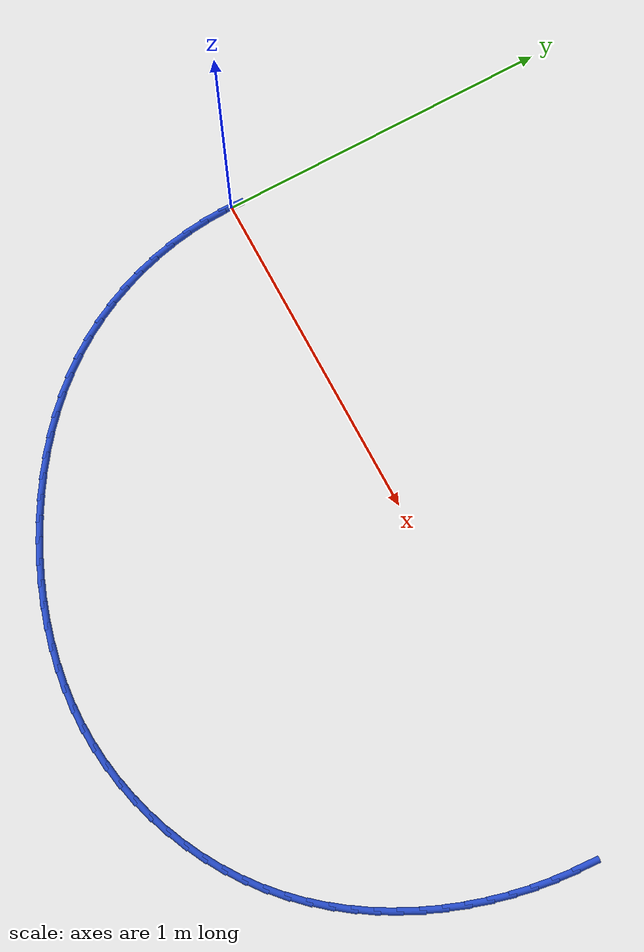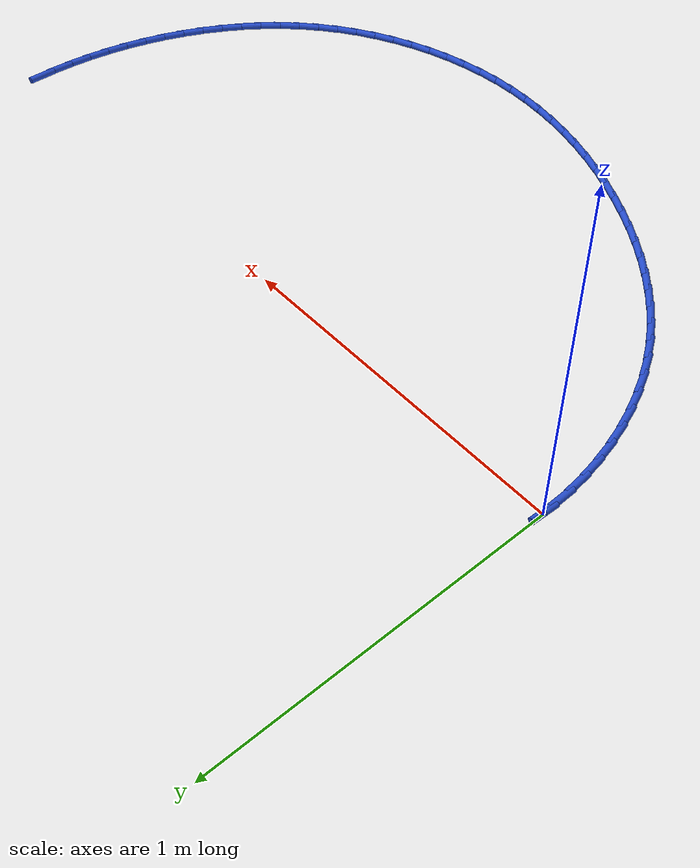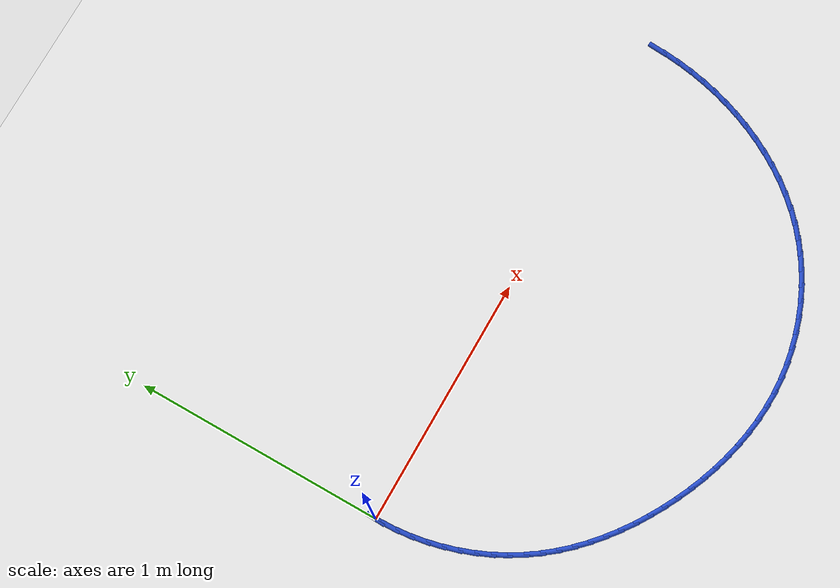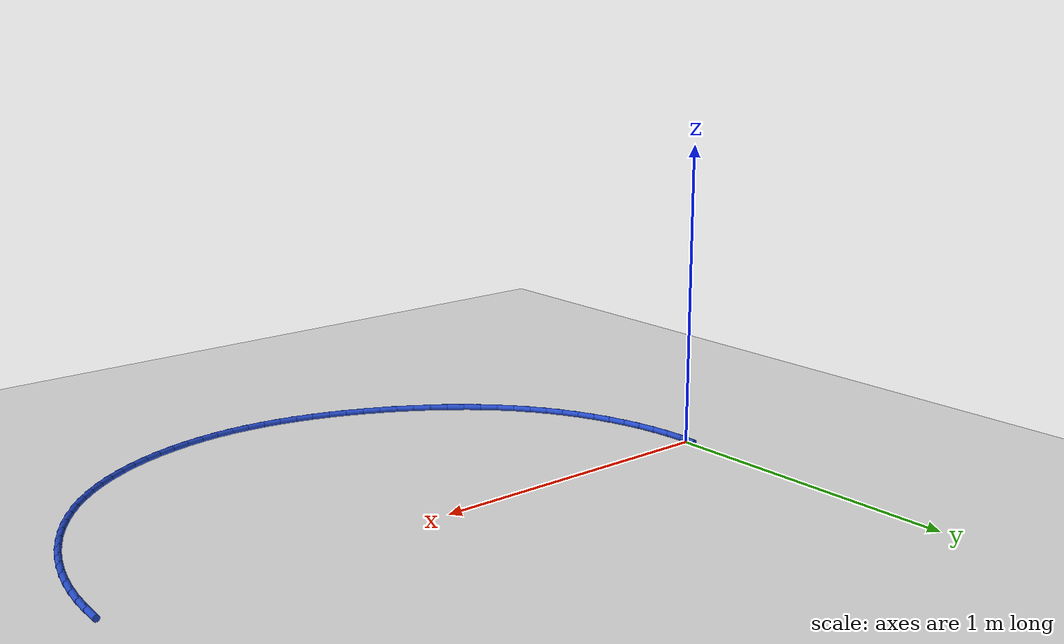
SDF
<sdf version="1.6">
 <world name="default">
  <model name="ground_plane">
   <static>1</static>
   <link name="link">
    <collision name="collision">
     <geometry><plane><normal>0 0 1</normal><size>100 100</size></plane></geometry>
     <surface><friction><ode><mu>100</mu><mu2>50</mu2></ode></friction></surface>
    </collision>
    <visual name="visual">
     <cast_shadows>0</cast_shadows>
     <geometry><plane><normal>0 0 1</normal><size>100 100</size></plane></geometry>
     <material>
      <script><uri>file://media/materials/scripts/gazebo.material</uri><name>Gazebo/WhiteGlow</name></script>
     </material>
    </visual>
   </link>
  </model>
  <model name="line">
   <link name="link_0">
    <pose>-2.7755575615628914e-17 -1.249000902703301e-16 0.01 0 1.57 1.528311420767567</pose>
    <collision name="collision">
     <geometry><cylinder><radius>0.01</radius><length>0.08</length></cylinder></geometry>
    </collision>
    <visual name="visual">
     <material>
      <script><name>Gazebo/Blue</name><uri>file://media/materials/scripts/gazebo.material</uri></script>
     </material>
     <geometry><cylinder><radius>0.01</radius><length>0.08</length></cylinder></geometry>
    </visual>
   </link>
   <link name="link_56">
    <pose>2.0990689467882016 -0.0384163237680262 0.01 0 1.57 1.5016381213322398</pose>
    <collision name="collision">
     <geometry><cylinder><radius>0.01</radius><length>0.08</length></cylinder></geometry>
    </collision>
    <visual name="visual">
     <material>
      <script><name>Gazebo/Blue</name><uri>file://media/materials/scripts/gazebo.material</uri></script>
     </material>
     <geometry><cylinder><radius>0.01</radius><length>0.08</length></cylinder></geometry>
    </visual>
   </link>
   <link name="link_57">
    <pose>2.0948997554606317 -0.09860502150597478 0.01 0 1.57 1.4510282659480043</pose>
    <collision name="collision">
     <geometry><cylinder><radius>0.01</radius><length>0.08</length></cylinder></geometry>
    </collision>
    <visual name="visual">
     <material>
      <script><name>Gazebo/Blue</name><uri>file://media/materials/scripts/gazebo.material</uri></script>
     </material>
     <geometry><cylinder><radius>0.01</radius><length>0.08</length></cylinder></geometry>
    </visual>
   </link>
   <link name="link_58">
    <pose>2.08768727410764 -0.1585372109972912 0.01 0 1.57 1.4006070061159641</pose>
    <collision name="collision">
     <geometry><cylinder><radius>0.01</radius><length>0.08</length></cylinder></geometry>
    </collision>
    <visual name="visual">
     <material>
      <script><name>Gazebo/Blue</name><uri>file://media/materials/scripts/gazebo.material</uri></script>
     </material>
     <geometry><cylinder><radius>0.01</radius><length>0.08</length></cylinder></geometry>
    </visual>
   </link>
   <link name="link_59">
    <pose>2.077454255240359 -0.21808283793392588 0.01 0 1.57 1.3502999251719656</pose>
    <collision name="collision">
     <geometry><cylinder><radius>0.01</radius><length>0.08</length></cylinder></geometry>
    </collision>
    <visual name="visual">
     <material>
      <script><name>Gazebo/Blue</name><uri>file://media/materials/scripts/gazebo.material</uri></script>
     </material>
     <geometry><cylinder><radius>0.01</radius><length>0.08</length></cylinder></geometry>
    </visual>
   </link>
   <link name="link_60">
    <pose>2.064223451369922 -0.2771118480078263 0.01 0 1.57 1.300027614703623</pose>
    <collision name="collision">
     <geometry><cylinder><radius>0.01</radius><length>0.08</length></cylinder></geometry>
    </collision>
    <visual name="visual">
     <material>
      <script><name>Gazebo/Blue</name><uri>file://media/materials/scripts/gazebo.material</uri></script>
     </material>
     <geometry><cylinder><radius>0.01</radius><length>0.08</length></cylinder></geometry>
    </visual>
   </link>
   <link name="link_61">
    <pose>2.048017543666311 -0.33549344261498915 0.01 0 1.57 1.2494542087139584</pose>
    <collision name="collision">
     <geometry><cylinder><radius>0.01</radius><length>0.08</length></cylinder></geometry>
    </collision>
    <visual name="visual">
     <material>
      <script><name>Gazebo/Blue</name><uri>file://media/materials/scripts/gazebo.material</uri></script>
     </material>
     <geometry><cylinder><radius>0.01</radius><length>0.08</length></cylinder></geometry>
    </visual>
   </link>
   <link name="link_62">
    <pose>2.0288554889673236 -0.39305796752273653 0.01 0 1.57 1.1979938788183087</pose>
    <collision name="collision">
     <geometry><cylinder><radius>0.01</radius><length>0.08</length></cylinder></geometry>
    </collision>
    <visual name="visual">
     <material>
      <script><name>Gazebo/Blue</name><uri>file://media/materials/scripts/gazebo.material</uri></script>
     </material>
     <geometry><cylinder><radius>0.01</radius><length>0.08</length></cylinder></geometry>
    </visual>
   </link>
   <link name="link_63">
    <pose>2.006750770308327 -0.44957866080113745 0.01 0 1.57 1.1453286029634988</pose>
    <collision name="collision">
     <geometry><cylinder><radius>0.01</radius><length>0.08</length></cylinder></geometry>
    </collision>
    <visual name="visual">
     <material>
      <script><name>Gazebo/Blue</name><uri>file://media/materials/scripts/gazebo.material</uri></script>
     </material>
     <geometry><cylinder><radius>0.01</radius><length>0.08</length></cylinder></geometry>
    </visual>
   </link>
   <link name="link_64">
    <pose>1.981716433142336 -0.5048241952621892 0.01 0 1.57 1.091180291250496</pose>
    <collision name="collision">
     <geometry><cylinder><radius>0.01</radius><length>0.08</length></cylinder></geometry>
    </collision>
    <visual name="visual">
     <material>
      <script><name>Gazebo/Blue</name><uri>file://media/materials/scripts/gazebo.material</uri></script>
     </material>
     <geometry><cylinder><radius>0.01</radius><length>0.08</length></cylinder></geometry>
    </visual>
   </link>
   <link name="link_65">
    <pose>1.9537655229223605 -0.5585632437178906 0.01 0 1.57 1.035287922951446</pose>
    <collision name="collision">
     <geometry><cylinder><radius>0.01</radius><length>0.08</length></cylinder></geometry>
    </collision>
    <visual name="visual">
     <material>
      <script><name>Gazebo/Blue</name><uri>file://media/materials/scripts/gazebo.material</uri></script>
     </material>
     <geometry><cylinder><radius>0.01</radius><length>0.08</length></cylinder></geometry>
    </visual>
   </link>
   <link name="link_66">
    <pose>1.922911085101413 -0.6105644789802401 0.01 0 1.57 0.9774139737150497</pose>
    <collision name="collision">
     <geometry><cylinder><radius>0.01</radius><length>0.08</length></cylinder></geometry>
    </collision>
    <visual name="visual">
     <material>
      <script><name>Gazebo/Blue</name><uri>file://media/materials/scripts/gazebo.material</uri></script>
     </material>
     <geometry><cylinder><radius>0.01</radius><length>0.08</length></cylinder></geometry>
    </visual>
   </link>
   <link name="link_67">
    <pose>1.889166165132506 -0.6605965738612352 0.01 0 1.57 0.9173532860880779</pose>
    <collision name="collision">
     <geometry><cylinder><radius>0.01</radius><length>0.08</length></cylinder></geometry>
    </collision>
    <visual name="visual">
     <material>
      <script><name>Gazebo/Blue</name><uri>file://media/materials/scripts/gazebo.material</uri></script>
     </material>
     <geometry><cylinder><radius>0.01</radius><length>0.08</length></cylinder></geometry>
    </visual>
   </link>
   <link name="link_68">
    <pose>1.8525438084686505 -0.708428201172875 0.01 0 1.57 0.8549444720194123</pose>
    <collision name="collision">
     <geometry><cylinder><radius>0.01</radius><length>0.08</length></cylinder></geometry>
    </collision>
    <visual name="visual">
     <material>
      <script><name>Gazebo/Blue</name><uri>file://media/materials/scripts/gazebo.material</uri></script>
     </material>
     <geometry><cylinder><radius>0.01</radius><length>0.08</length></cylinder></geometry>
    </visual>
   </link>
   <link name="link_69">
    <pose>1.8130570605628595 -0.7538280337271563 0.01 0 1.57 0.7900836163991656</pose>
    <collision name="collision">
     <geometry><cylinder><radius>0.01</radius><length>0.08</length></cylinder></geometry>
    </collision>
    <visual name="visual">
     <material>
      <script><name>Gazebo/Blue</name><uri>file://media/materials/scripts/gazebo.material</uri></script>
     </material>
     <geometry><cylinder><radius>0.01</radius><length>0.08</length></cylinder></geometry>
    </visual>
   </link>
   <link name="link_70">
    <pose>1.7707189668681442 -0.796564744336079 0.01 0 1.57 0.7227536245407105</pose>
    <collision name="collision">
     <geometry><cylinder><radius>0.01</radius><length>0.08</length></cylinder></geometry>
    </collision>
    <visual name="visual">
     <material>
      <script><name>Gazebo/Blue</name><uri>file://media/materials/scripts/gazebo.material</uri></script>
     </material>
     <geometry><cylinder><radius>0.01</radius><length>0.08</length></cylinder></geometry>
    </visual>
   </link>
   <link name="link_71">
    <pose>1.725543366677021 -0.836407435027778 0.01 0 1.57 0.6544915356744053</pose>
    <collision name="collision">
     <geometry><cylinder><radius>0.01</radius><length>0.08</length></cylinder></geometry>
    </collision>
    <visual name="visual">
     <material>
      <script><name>Gazebo/Blue</name><uri>file://media/materials/scripts/gazebo.material</uri></script>
     </material>
     <geometry><cylinder><radius>0.01</radius><length>0.08</length></cylinder></geometry>
    </visual>
   </link>
   <link name="link_72">
    <pose>1.6776303620639228 -0.8731718487168267 0.01 0 1.57 0.587973512055599</pose>
    <collision name="collision">
     <geometry><cylinder><radius>0.01</radius><length>0.08</length></cylinder></geometry>
    </collision>
    <visual name="visual">
     <material>
      <script><name>Gazebo/Blue</name><uri>file://media/materials/scripts/gazebo.material</uri></script>
     </material>
     <geometry><cylinder><radius>0.01</radius><length>0.08</length></cylinder></geometry>
    </visual>
   </link>
   <link name="link_73">
    <pose>1.6272425661077219 -0.9067615953809018 0.01 0 1.57 0.5231735142261574</pose>
    <collision name="collision">
     <geometry><cylinder><radius>0.01</radius><length>0.08</length></cylinder></geometry>
    </collision>
    <visual name="visual">
     <material>
      <script><name>Gazebo/Blue</name><uri>file://media/materials/scripts/gazebo.material</uri></script>
     </material>
     <geometry><cylinder><radius>0.01</radius><length>0.08</length></cylinder></geometry>
    </visual>
   </link>
   <link name="link_74">
    <pose>1.5746605807782226 -0.9370900112991127 0.01 0 1.57 0.45971497010024237</pose>
    <collision name="collision">
     <geometry><cylinder><radius>0.01</radius><length>0.08</length></cylinder></geometry>
    </collision>
    <visual name="visual">
     <material>
      <script><name>Gazebo/Blue</name><uri>file://media/materials/scripts/gazebo.material</uri></script>
     </material>
     <geometry><cylinder><radius>0.01</radius><length>0.08</length></cylinder></geometry>
    </visual>
   </link>
   <link name="link_75">
    <pose>1.5201650080452331 -0.964070432750567 0.01 0 1.57 0.3972003617985025</pose>
    <collision name="collision">
     <geometry><cylinder><radius>0.01</radius><length>0.08</length></cylinder></geometry>
    </collision>
    <visual name="visual">
     <material>
      <script><name>Gazebo/Blue</name><uri>file://media/materials/scripts/gazebo.material</uri></script>
     </material>
     <geometry><cylinder><radius>0.01</radius><length>0.08</length></cylinder></geometry>
    </visual>
   </link>
   <link name="link_76">
    <pose>1.4640364498785572 -0.9876161960143741 0.01 0 1.57 0.33521895207863944</pose>
    <collision name="collision">
     <geometry><cylinder><radius>0.01</radius><length>0.08</length></cylinder></geometry>
    </collision>
    <visual name="visual">
     <material>
      <script><name>Gazebo/Blue</name><uri>file://media/materials/scripts/gazebo.material</uri></script>
     </material>
     <geometry><cylinder><radius>0.01</radius><length>0.08</length></cylinder></geometry>
    </visual>
   </link>
   <link name="link_77">
    <pose>1.4065555082480012 -1.007640637369641 0.01 0 1.57 0.27335222612702365</pose>
    <collision name="collision">
     <geometry><cylinder><radius>0.01</radius><length>0.08</length></cylinder></geometry>
    </collision>
    <visual name="visual">
     <material>
      <script><name>Gazebo/Blue</name><uri>file://media/materials/scripts/gazebo.material</uri></script>
     </material>
     <geometry><cylinder><radius>0.01</radius><length>0.08</length></cylinder></geometry>
    </visual>
   </link>
   <link name="link_78">
    <pose>1.3480027851233698 -1.0240570930954764 0.01 0 1.57 0.2111780087107186</pose>
    <collision name="collision">
     <geometry><cylinder><radius>0.01</radius><length>0.08</length></cylinder></geometry>
    </collision>
    <visual name="visual">
     <material>
      <script><name>Gazebo/Blue</name><uri>file://media/materials/scripts/gazebo.material</uri></script>
     </material>
     <geometry><cylinder><radius>0.01</radius><length>0.08</length></cylinder></geometry>
    </visual>
   </link>
   <link name="link_79">
    <pose>1.28865888247447 -1.0367788994709888 0.01 0 1.57 0.14827423749887417</pose>
    <collision name="collision">
     <geometry><cylinder><radius>0.01</radius><length>0.08</length></cylinder></geometry>
    </collision>
    <visual name="visual">
     <material>
      <script><name>Gazebo/Blue</name><uri>file://media/materials/scripts/gazebo.material</uri></script>
     </material>
     <geometry><cylinder><radius>0.01</radius><length>0.08</length></cylinder></geometry>
    </visual>
   </link>
   <link name="link_80">
    <pose>1.2288044022711058 -1.0457193927752866 0.01 0 1.57 0.08422339304668282</pose>
    <collision name="collision">
     <geometry><cylinder><radius>0.01</radius><length>0.08</length></cylinder></geometry>
    </collision>
    <visual name="visual">
     <material>
      <script><name>Gazebo/Blue</name><uri>file://media/materials/scripts/gazebo.material</uri></script>
     </material>
     <geometry><cylinder><radius>0.01</radius><length>0.08</length></cylinder></geometry>
    </visual>
   </link>
   <link name="link_81">
    <pose>1.168719946483085 -1.0507919092874782 0.01 0 1.57 0.019200824086310072</pose>
    <collision name="collision">
     <geometry><cylinder><radius>0.01</radius><length>0.08</length></cylinder></geometry>
    </collision>
    <visual name="visual">
     <material>
      <script><name>Gazebo/Blue</name><uri>file://media/materials/scripts/gazebo.material</uri></script>
     </material>
     <geometry><cylinder><radius>0.01</radius><length>0.08</length></cylinder></geometry>
    </visual>
   </link>
   <link name="link_82">
    <pose>1.1086629983351688 -1.051945193915291 0.01 0 1.57 -0.0441472594957263</pose>
    <collision name="collision">
     <geometry><cylinder><radius>0.01</radius><length>0.08</length></cylinder></geometry>
    </collision>
    <visual name="visual">
     <material>
      <script><name>Gazebo/Blue</name><uri>file://media/materials/scripts/gazebo.material</uri></script>
     </material>
     <geometry><cylinder><radius>0.01</radius><length>0.08</length></cylinder></geometry>
    </visual>
   </link>
   <link name="link_83">
    <pose>1.0487788938912799 -1.0492997559577073 0.01 0 1.57 -0.10484323609497484</pose>
    <collision name="collision">
     <geometry><cylinder><radius>0.01</radius><length>0.08</length></cylinder></geometry>
    </collision>
    <visual name="visual">
     <material>
      <script><name>Gazebo/Blue</name><uri>file://media/materials/scripts/gazebo.material</uri></script>
     </material>
     <geometry><cylinder><radius>0.01</radius><length>0.08</length></cylinder></geometry>
    </visual>
   </link>
   <link name="link_84">
    <pose>0.9891790110357934 -1.0430281150008573 0.01 0 1.57 -0.16281299040709563</pose>
    <collision name="collision">
     <geometry><cylinder><radius>0.01</radius><length>0.08</length></cylinder></geometry>
    </collision>
    <visual name="visual">
     <material>
      <script><name>Gazebo/Blue</name><uri>file://media/materials/scripts/gazebo.material</uri></script>
     </material>
     <geometry><cylinder><radius>0.01</radius><length>0.08</length></cylinder></geometry>
    </visual>
   </link>
   <link name="link_85">
    <pose>0.9299747202110114 -1.0333028020291377 0.01 0 1.57 -0.2180617342469177</pose>
    <collision name="collision">
     <geometry><cylinder><radius>0.01</radius><length>0.08</length></cylinder></geometry>
    </collision>
    <visual name="visual">
     <material>
      <script><name>Gazebo/Blue</name><uri>file://media/materials/scripts/gazebo.material</uri></script>
     </material>
     <geometry><cylinder><radius>0.01</radius><length>0.08</length></cylinder></geometry>
    </visual>
   </link>
   <link name="link_86">
    <pose>0.8712773918592366 -1.0202963480269447 0.01 0 1.57 -0.27065926144070784</pose>
    <collision name="collision">
     <geometry><cylinder><radius>0.01</radius><length>0.08</length></cylinder></geometry>
    </collision>
    <visual name="visual">
     <material>
      <script><name>Gazebo/Blue</name><uri>file://media/materials/scripts/gazebo.material</uri></script>
     </material>
     <geometry><cylinder><radius>0.01</radius><length>0.08</length></cylinder></geometry>
    </visual>
   </link>
   <link name="link_87">
    <pose>0.8131983964227698 -1.004181283978674 0.01 0 1.57 -0.32072562668594207</pose>
    <collision name="collision">
     <geometry><cylinder><radius>0.01</radius><length>0.08</length></cylinder></geometry>
    </collision>
    <visual name="visual">
     <material>
      <script><name>Gazebo/Blue</name><uri>file://media/materials/scripts/gazebo.material</uri></script>
     </material>
     <geometry><cylinder><radius>0.01</radius><length>0.08</length></cylinder></geometry>
    </visual>
   </link>
   <link name="link_88">
    <pose>0.7558491043439144 -0.9851301408687217 0.01 0 1.57 -0.36841825484527085</pose>
    <collision name="collision">
     <geometry><cylinder><radius>0.01</radius><length>0.08</length></cylinder></geometry>
    </collision>
    <visual name="visual">
     <material>
      <script><name>Gazebo/Blue</name><uri>file://media/materials/scripts/gazebo.material</uri></script>
     </material>
     <geometry><cylinder><radius>0.01</radius><length>0.08</length></cylinder></geometry>
    </visual>
   </link>
   <link name="link_89">
    <pose>0.6993408860649715 -0.9633154496814846 0.01 0 1.57 -0.4139211183435951</pose>
    <collision name="collision">
     <geometry><cylinder><radius>0.01</radius><length>0.08</length></cylinder></geometry>
    </collision>
    <visual name="visual">
     <material>
      <script><name>Gazebo/Blue</name><uri>file://media/materials/scripts/gazebo.material</uri></script>
     </material>
     <geometry><cylinder><radius>0.01</radius><length>0.08</length></cylinder></geometry>
    </visual>
   </link>
   <link name="link_90">
    <pose>0.6437851120282438 -0.9389097414013581 0.01 0 1.57 -0.4574362000726962</pose>
    <collision name="collision">
     <geometry><cylinder><radius>0.01</radius><length>0.08</length></cylinder></geometry>
    </collision>
    <visual name="visual">
     <material>
      <script><name>Gazebo/Blue</name><uri>file://media/materials/scripts/gazebo.material</uri></script>
     </material>
     <geometry><cylinder><radius>0.01</radius><length>0.08</length></cylinder></geometry>
    </visual>
   </link>
   <link name="link_91">
    <pose>0.5892931526760327 -0.9120855470127383 0.01 0 1.57 -0.49963237468859195</pose>
    <collision name="collision">
     <geometry><cylinder><radius>0.01</radius><length>0.08</length></cylinder></geometry>
    </collision>
    <visual name="visual">
     <material>
      <script><name>Gazebo/Blue</name><uri>file://media/materials/scripts/gazebo.material</uri></script>
     </material>
     <geometry><cylinder><radius>0.01</radius><length>0.08</length></cylinder></geometry>
    </visual>
   </link>
   <link name="link_92">
    <pose>0.5359893426678424 -0.8829909819140146 0.01 0 1.57 -0.5431000786992015</pose>
    <collision name="collision">
     <geometry><cylinder><radius>0.01</radius><length>0.08</length></cylinder></geometry>
    </collision>
    <visual name="visual">
     <material>
      <script><name>Gazebo/Blue</name><uri>file://media/materials/scripts/gazebo.material</uri></script>
     </material>
     <geometry><cylinder><radius>0.01</radius><length>0.08</length></cylinder></geometry>
    </visual>
   </link>
   <link name="link_93">
    <pose>0.4840654966585472 -0.851647076033992 0.01 0 1.57 -0.5888271905221613</pose>
    <collision name="collision">
     <geometry><cylinder><radius>0.01</radius><length>0.08</length></cylinder></geometry>
    </collision>
    <visual name="visual">
     <material>
      <script><name>Gazebo/Blue</name><uri>file://media/materials/scripts/gazebo.material</uri></script>
     </material>
     <geometry><cylinder><radius>0.01</radius><length>0.08</length></cylinder></geometry>
    </visual>
   </link>
   <link name="link_94">
    <pose>0.43373531500183365 -0.8180336418370255 0.01 0 1.57 -0.6370209942457727</pose>
    <collision name="collision">
     <geometry><cylinder><radius>0.01</radius><length>0.08</length></cylinder></geometry>
    </collision>
    <visual name="visual">
     <material>
      <script><name>Gazebo/Blue</name><uri>file://media/materials/scripts/gazebo.material</uri></script>
     </material>
     <geometry><cylinder><radius>0.01</radius><length>0.08</length></cylinder></geometry>
    </visual>
   </link>
   <link name="link_95">
    <pose>0.3852125094375986 -0.7821304703437477 0.01 0 1.57 -0.6878674043826802</pose>
    <collision name="collision">
     <geometry><cylinder><radius>0.01</radius><length>0.08</length></cylinder></geometry>
    </collision>
    <visual name="visual">
     <material>
      <script><name>Gazebo/Blue</name><uri>file://media/materials/scripts/gazebo.material</uri></script>
     </material>
     <geometry><cylinder><radius>0.01</radius><length>0.08</length></cylinder></geometry>
    </visual>
   </link>
   <link name="link_96">
    <pose>0.3387107917057414 -0.7439173525747932 0.01 0 1.57 -0.7415207100947125</pose>
    <collision name="collision">
     <geometry><cylinder><radius>0.01</radius><length>0.08</length></cylinder></geometry>
    </collision>
    <visual name="visual">
     <material>
      <script><name>Gazebo/Blue</name><uri>file://media/materials/scripts/gazebo.material</uri></script>
     </material>
     <geometry><cylinder><radius>0.01</radius><length>0.08</length></cylinder></geometry>
    </visual>
   </link>
   <link name="link_97">
    <pose>0.29444387354615953 -0.7033740795507955 0.01 0 1.57 -0.7980902508776608</pose>
    <collision name="collision">
     <geometry><cylinder><radius>0.01</radius><length>0.08</length></cylinder></geometry>
    </collision>
    <visual name="visual">
     <material>
      <script><name>Gazebo/Blue</name><uri>file://media/materials/scripts/gazebo.material</uri></script>
     </material>
     <geometry><cylinder><radius>0.01</radius><length>0.08</length></cylinder></geometry>
    </visual>
   </link>
   <link name="link_98">
    <pose>0.25262546669875025 -0.6604804422923866 0.01 0 1.57 -0.8576248073349272</pose>
    <collision name="collision">
     <geometry><cylinder><radius>0.01</radius><length>0.08</length></cylinder></geometry>
    </collision>
    <visual name="visual">
     <material>
      <script><name>Gazebo/Blue</name><uri>file://media/materials/scripts/gazebo.material</uri></script>
     </material>
     <geometry><cylinder><radius>0.01</radius><length>0.08</length></cylinder></geometry>
    </visual>
   </link>
   <link name="link_99">
    <pose>0.21346928290341288 -0.6152162318202019 0.01 0 1.57 -0.9200956734909069</pose>
    <collision name="collision">
     <geometry><cylinder><radius>0.01</radius><length>0.08</length></cylinder></geometry>
    </collision>
    <visual name="visual">
     <material>
      <script><name>Gazebo/Blue</name><uri>file://media/materials/scripts/gazebo.material</uri></script>
     </material>
     <geometry><cylinder><radius>0.01</radius><length>0.08</length></cylinder></geometry>
    </visual>
   </link>
   <link name="link_100">
    <pose>0.17718903390004448 -0.5675612391548739 0.01 0 1.57 -0.9853031558385986</pose>
    <collision name="collision">
     <geometry><cylinder><radius>0.01</radius><length>0.08</length></cylinder></geometry>
    </collision>
    <visual name="visual">
     <material>
      <script><name>Gazebo/Blue</name><uri>file://media/materials/scripts/gazebo.material</uri></script>
     </material>
     <geometry><cylinder><radius>0.01</radius><length>0.08</length></cylinder></geometry>
    </visual>
   </link>
   <link name="link_101">
    <pose>0.14399623156798275 -0.5175003031699591 0.01 0 1.57 -1.0509439577406758</pose>
    <collision name="collision">
     <geometry><cylinder><radius>0.01</radius><length>0.08</length></cylinder></geometry>
    </collision>
    <visual name="visual">
     <material>
      <script><name>Gazebo/Blue</name><uri>file://media/materials/scripts/gazebo.material</uri></script>
     </material>
     <geometry><cylinder><radius>0.01</radius><length>0.08</length></cylinder></geometry>
    </visual>
   </link>
   <link name="link_102">
    <pose>0.11403967296037683 -0.46516216968665774 0.01 0 1.57 -1.1148479815505914</pose>
    <collision name="collision">
     <geometry><cylinder><radius>0.01</radius><length>0.08</length></cylinder></geometry>
    </collision>
    <visual name="visual">
     <material>
      <script><name>Gazebo/Blue</name><uri>file://media/materials/scripts/gazebo.material</uri></script>
     </material>
     <geometry><cylinder><radius>0.01</radius><length>0.08</length></cylinder></geometry>
    </visual>
   </link>
   <link name="link_103">
    <pose>0.08739786327362296 -0.41083687791028733 0.01 0 1.57 -1.1773268662170464</pose>
    <collision name="collision">
     <geometry><cylinder><radius>0.01</radius><length>0.08</length></cylinder></geometry>
    </collision>
    <visual name="visual">
     <material>
      <script><name>Gazebo/Blue</name><uri>file://media/materials/scripts/gazebo.material</uri></script>
     </material>
     <geometry><cylinder><radius>0.01</radius><length>0.08</length></cylinder></geometry>
    </visual>
   </link>
   <link name="link_104">
    <pose>0.06414558625474209 -0.35482300637335007 0.01 0 1.57 -1.2388377241447104</pose>
    <collision name="collision">
     <geometry><cylinder><radius>0.01</radius><length>0.08</length></cylinder></geometry>
    </collision>
    <visual name="visual">
     <material>
      <script><name>Gazebo/Blue</name><uri>file://media/materials/scripts/gazebo.material</uri></script>
     </material>
     <geometry><cylinder><radius>0.01</radius><length>0.08</length></cylinder></geometry>
    </visual>
   </link>
   <link name="link_105">
    <pose>0.04435762565075623 -0.2974191336083501 0.01 0 1.57 -1.299846821932019</pose>
    <collision name="collision">
     <geometry><cylinder><radius>0.01</radius><length>0.08</length></cylinder></geometry>
    </collision>
    <visual name="visual">
     <material>
      <script><name>Gazebo/Blue</name><uri>file://media/materials/scripts/gazebo.material</uri></script>
     </material>
     <geometry><cylinder><radius>0.01</radius><length>0.08</length></cylinder></geometry>
    </visual>
   </link>
   <link name="link_106">
    <pose>0.028108765208686395 -0.23892383814778886 0.01 0 1.57 -1.360826053058021</pose>
    <collision name="collision">
     <geometry><cylinder><radius>0.01</radius><length>0.08</length></cylinder></geometry>
    </collision>
    <visual name="visual">
     <material>
      <script><name>Gazebo/Blue</name><uri>file://media/materials/scripts/gazebo.material</uri></script>
     </material>
     <geometry><cylinder><radius>0.01</radius><length>0.08</length></cylinder></geometry>
    </visual>
   </link>
   <link name="link_107">
    <pose>0.01547378867555449 -0.1796356985241709 0.01 0 1.57 -1.4222507903664532</pose>
    <collision name="collision">
     <geometry><cylinder><radius>0.01</radius><length>0.08</length></cylinder></geometry>
    </collision>
    <visual name="visual">
     <material>
      <script><name>Gazebo/Blue</name><uri>file://media/materials/scripts/gazebo.material</uri></script>
     </material>
     <geometry><cylinder><radius>0.01</radius><length>0.08</length></cylinder></geometry>
    </visual>
   </link>
   <link name="link_108">
    <pose>0.006527479798381688 -0.11985329326999765 0.01 0 1.57 -1.4845979430295475</pose>
    <collision name="collision">
     <geometry><cylinder><radius>0.01</radius><length>0.08</length></cylinder></geometry>
    </collision>
    <visual name="visual">
     <material>
      <script><name>Gazebo/Blue</name><uri>file://media/materials/scripts/gazebo.material</uri></script>
     </material>
     <geometry><cylinder><radius>0.01</radius><length>0.08</length></cylinder></geometry>
    </visual>
   </link>
   <link name="link_109">
    <pose>0.0013446223241897395 -0.059875200917773624 0.01 0 1.57 -1.5483430183845428</pose>
    <collision name="collision">
     <geometry><cylinder><radius>0.01</radius><length>0.08</length></cylinder></geometry>
    </collision>
    <visual name="visual">
     <material>
      <script><name>Gazebo/Blue</name><uri>file://media/materials/scripts/gazebo.material</uri></script>
     </material>
     <geometry><cylinder><radius>0.01</radius><length>0.08</length></cylinder></geometry>
    </visual>
   </link>
   <link name="link_110">
    <pose>-3.469446951953614e-18 -2.498001805406602e-16 0.01 0 1.57 1.5276377482415275</pose>
    <collision name="collision">
     <geometry><cylinder><radius>0.01</radius><length>0.08</length></cylinder></geometry>
    </collision>
    <visual name="visual">
     <material>
      <script><name>Gazebo/Blue</name><uri>file://media/materials/scripts/gazebo.material</uri></script>
     </material>
     <geometry><cylinder><radius>0.01</radius><length>0.08</length></cylinder></geometry>
    </visual>
   </link>
  </model>
 </world>
</sdf>
